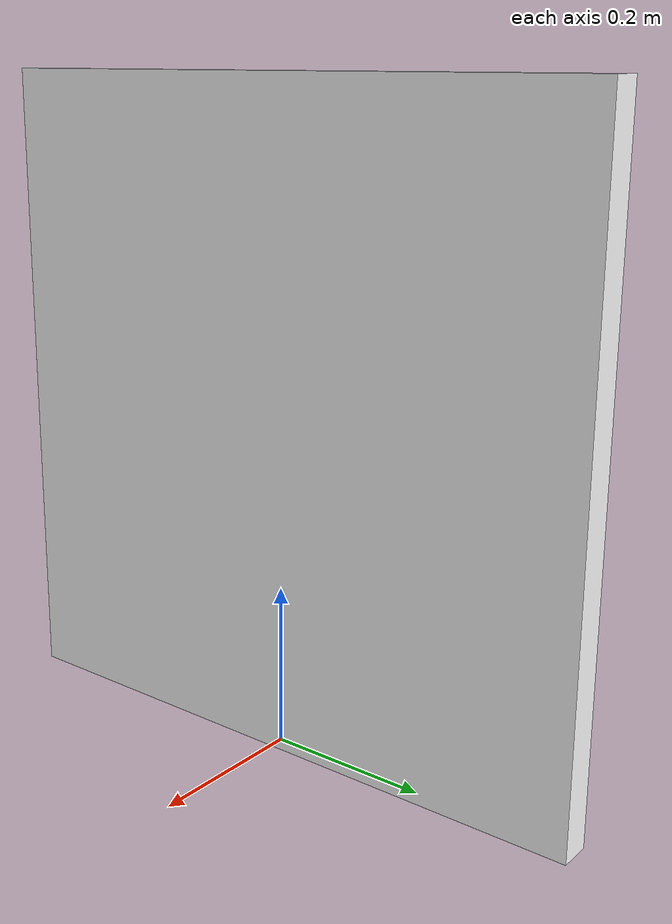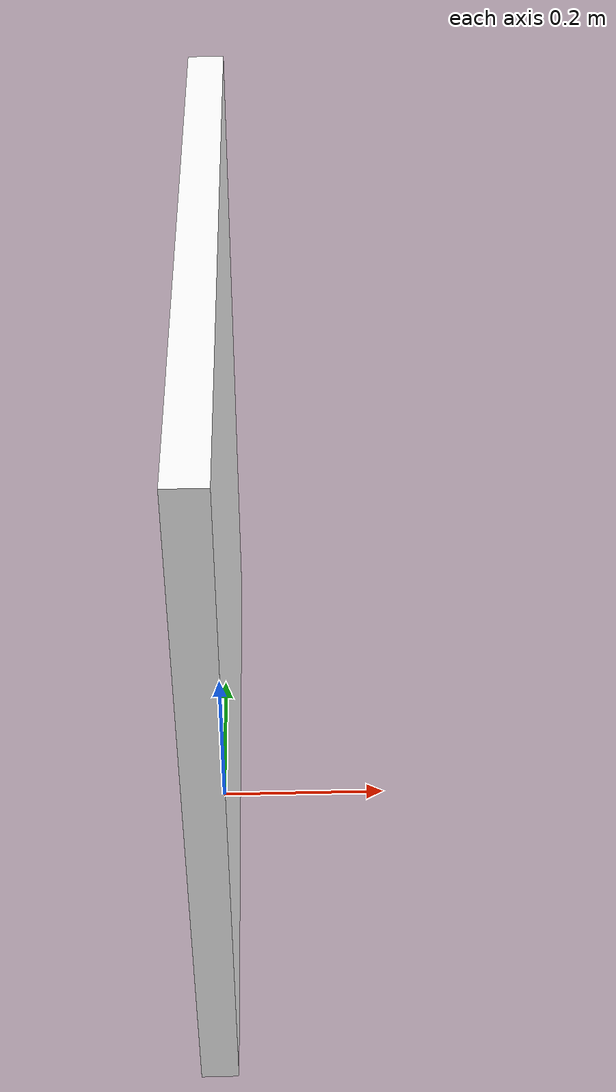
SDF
<?xml version="1.0"?>
<sdf version="1.8">
  <model name="marker_08">
    <static>true</static>
    <link name="link">
      <pose>0 0 0.4 0 0 0</pose>
      <visual name="tag">
        <geometry><box><size>0.04 0.8 0.8</size></box></geometry>
        <material>
          <ambient>1 1 1 1</ambient>
          <diffuse>1 1 1 1</diffuse>
          <specular>0 0 0 1</specular>
          <pbr>
            <metal>
              <albedo_map>/home/ros/ws/src/pro_lab_filters/config/aruco/marker_08.png</albedo_map>
              <emissive_map>/home/ros/ws/src/pro_lab_filters/config/aruco/marker_08.png</emissive_map>
              <metalness>0.0</metalness>
              <roughness>1.0</roughness>
            </metal>
          </pbr>
        </material>
      </visual>
    </link>
  </model>
</sdf>
